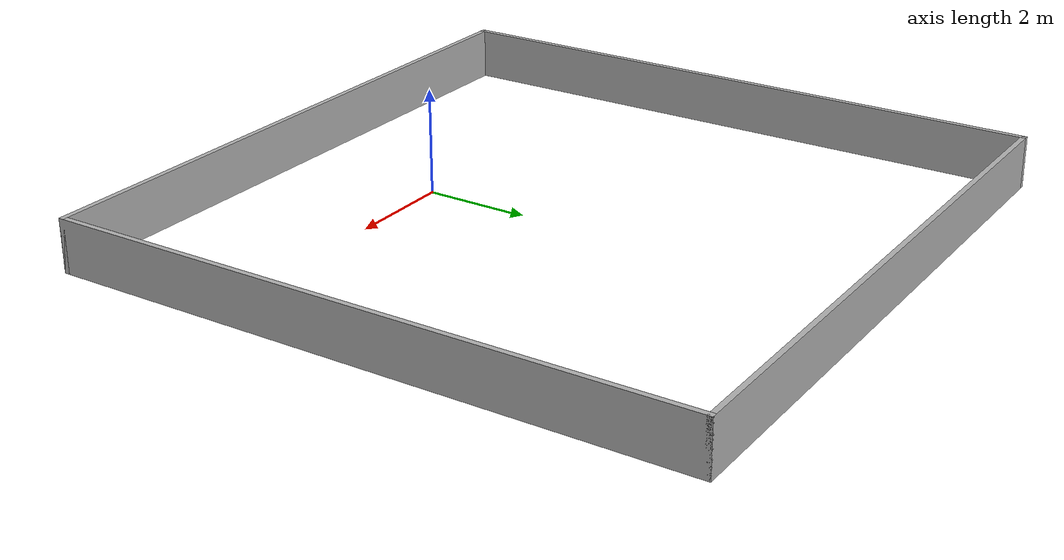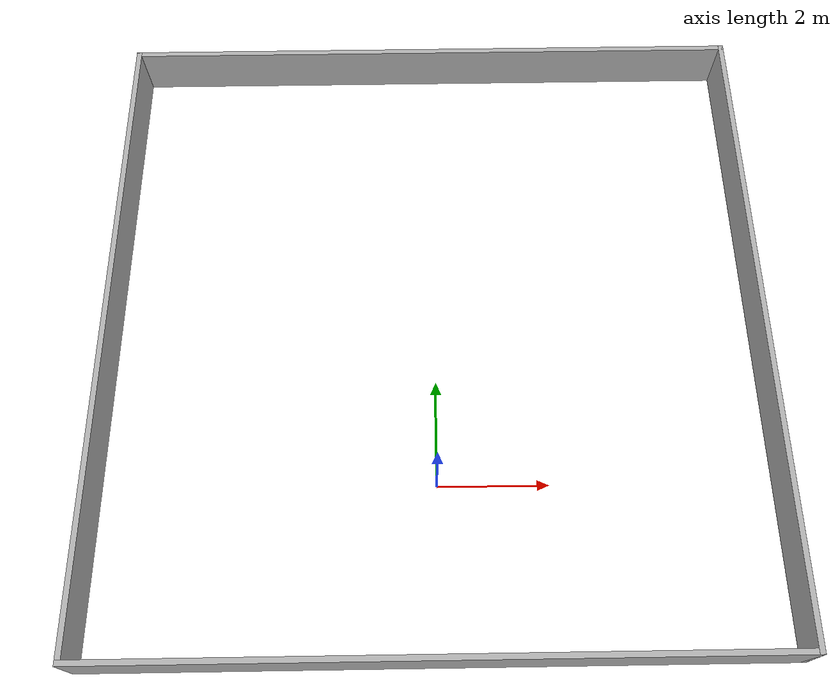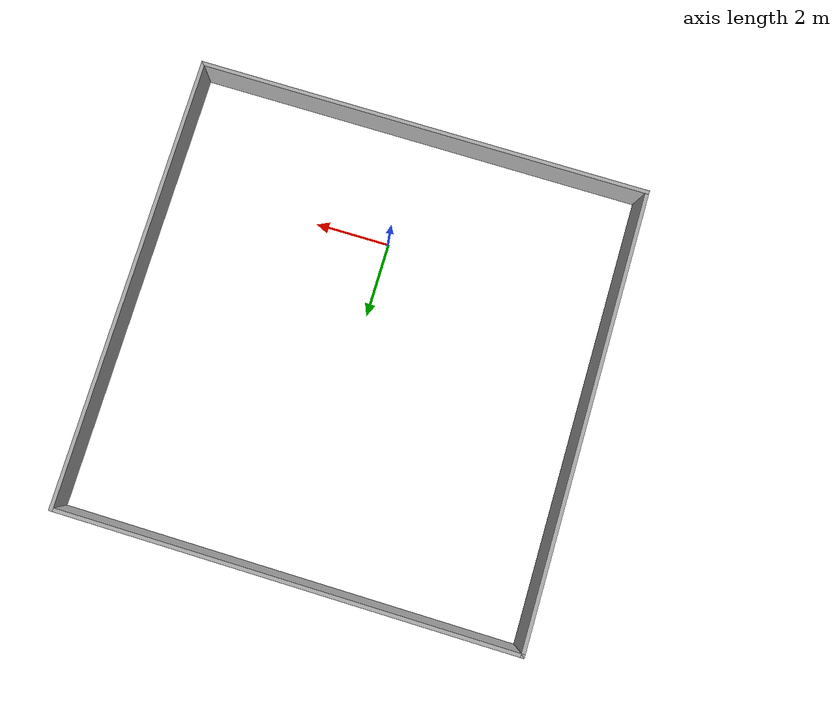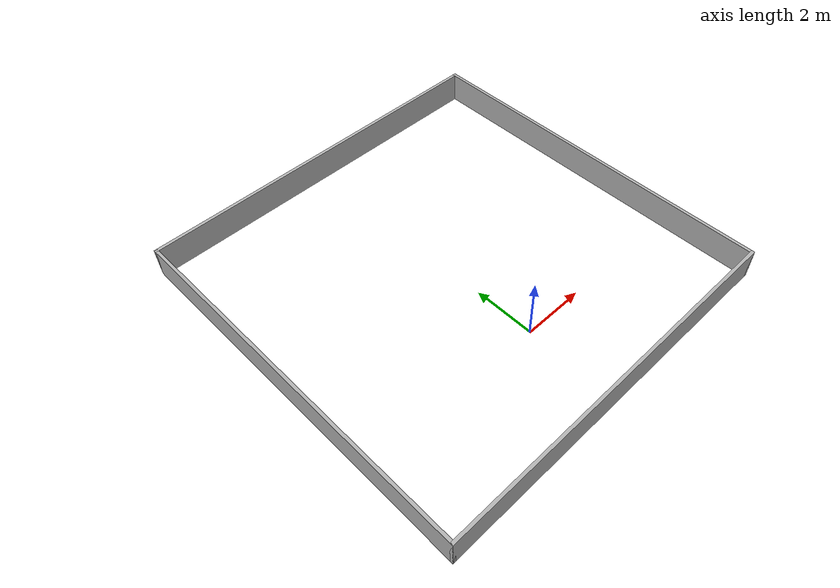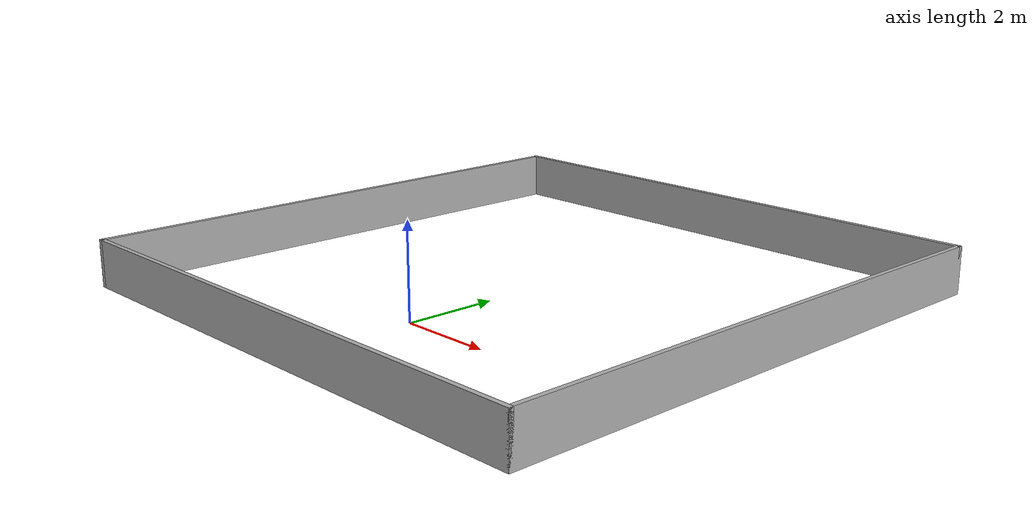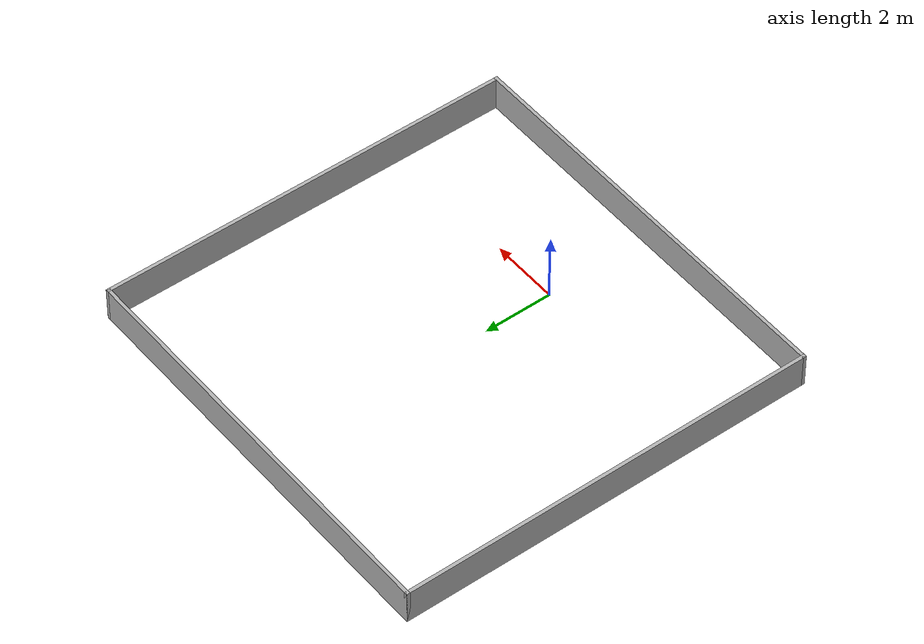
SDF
<sdf version="1.6">
 <world name="default">
  <gravity>0 0 -9.8</gravity>
  <model name="wall_south">
   <pose>0 -3.05 0.5 0 0 0</pose>
   <link name="link_wall_south">
    <inertial>
     <mass>1</mass>
     <inertia>
      <ixx>0.166667</ixx>
      <ixy>0</ixy>
      <ixz>0</ixz>
      <iyy>0.166667</iyy>
      <iyz>0</iyz>
      <izz>0.166667</izz>
     </inertia>
    </inertial>
    <visual name="visual">
     <geometry><box><size>12.2 0.1 1</size></box></geometry>
     <material>
      <ambient>0.9 0.3 0.3 1</ambient>
      <diffuse>0.7 0.7 0.7 1</diffuse>
      <specular>0.01 0.01 0.01 1</specular>
      <emissive>0 0 0 1</emissive>
      <shader type="vertex"><normal_map>__default__</normal_map></shader>
     </material>
    </visual>
    <collision name="collision">
     <geometry><box><size>12.2 0.1 1</size></box></geometry>
     <surface>
      <friction>
       <ode><mu>1</mu><mu2>1</mu2><fdir1>0 0 0</fdir1><slip1>0</slip1><slip2>0</slip2></ode>
       <torsional>
        <coefficient>1</coefficient>
        <patch_radius>0</patch_radius>
        <surface_radius>0</surface_radius>
        <use_patch_radius>1</use_patch_radius>
        <ode><slip>0</slip></ode>
       </torsional>
      </friction>
      <bounce><restitution_coefficient>0.8</restitution_coefficient><threshold>0</threshold></bounce>
      <contact>
       <collide_without_contact>0</collide_without_contact>
       <collide_without_contact_bitmask>1</collide_without_contact_bitmask>
       <collide_bitmask>1</collide_bitmask>
       <ode>
        <soft_cfm>0</soft_cfm>
        <soft_erp>0.2</soft_erp>
        <kp>1e+13</kp>
        <kd>1</kd>
        <max_vel>10</max_vel>
        <min_depth>0</min_depth>
       </ode>
       <bullet>
        <split_impulse>1</split_impulse>
        <split_impulse_penetration_threshold>-0.01</split_impulse_penetration_threshold>
        <soft_cfm>0</soft_cfm>
        <soft_erp>0.2</soft_erp>
        <kp>1e+13</kp>
        <kd>1</kd>
       </bullet>
      </contact>
     </surface>
    </collision>
   </link>
   <static>1</static>
   <allow_auto_disable>0</allow_auto_disable>
  </model>
  <model name="wall_east">
   <pose>6.05 3 0.5 0 0 0</pose>
   <link name="link_wall_east">
    <inertial>
     <mass>1</mass>
     <inertia>
      <ixx>0.166667</ixx>
      <ixy>0</ixy>
      <ixz>0</ixz>
      <iyy>0.166667</iyy>
      <iyz>0</iyz>
      <izz>0.166667</izz>
     </inertia>
    </inertial>
    <visual name="visual">
     <geometry><box><size>0.1 12.2 1</size></box></geometry>
     <material>
      <ambient>0.9 0.3 0.3 1</ambient>
      <diffuse>0.7 0.7 0.7 1</diffuse>
      <specular>0.01 0.01 0.01 1</specular>
      <emissive>0 0 0 1</emissive>
      <shader type="vertex"><normal_map>__default__</normal_map></shader>
     </material>
    </visual>
    <collision name="collision">
     <geometry><box><size>0.1 12.2 1</size></box></geometry>
     <surface>
      <friction>
       <ode><mu>1</mu><mu2>1</mu2><fdir1>0 0 0</fdir1><slip1>0</slip1><slip2>0</slip2></ode>
       <torsional>
        <coefficient>1</coefficient>
        <patch_radius>0</patch_radius>
        <surface_radius>0</surface_radius>
        <use_patch_radius>1</use_patch_radius>
        <ode><slip>0</slip></ode>
       </torsional>
      </friction>
      <bounce><restitution_coefficient>0.8</restitution_coefficient><threshold>0</threshold></bounce>
      <contact>
       <collide_without_contact>0</collide_without_contact>
       <collide_without_contact_bitmask>1</collide_without_contact_bitmask>
       <collide_bitmask>1</collide_bitmask>
       <ode>
        <soft_cfm>0</soft_cfm>
        <soft_erp>0.2</soft_erp>
        <kp>1e+13</kp>
        <kd>1</kd>
        <max_vel>10</max_vel>
        <min_depth>0</min_depth>
       </ode>
       <bullet>
        <split_impulse>1</split_impulse>
        <split_impulse_penetration_threshold>-0.01</split_impulse_penetration_threshold>
        <soft_cfm>0</soft_cfm>
        <soft_erp>0.2</soft_erp>
        <kp>1e+13</kp>
        <kd>1</kd>
       </bullet>
      </contact>
     </surface>
    </collision>
   </link>
   <static>1</static>
   <allow_auto_disable>0</allow_auto_disable>
  </model>
  <model name="wall_north">
   <pose>0 9.05 0.5 0 0 0</pose>
   <link name="link_wall_north">
    <inertial>
     <mass>1</mass>
     <inertia>
      <ixx>0.166667</ixx>
      <ixy>0</ixy>
      <ixz>0</ixz>
      <iyy>0.166667</iyy>
      <iyz>0</iyz>
      <izz>0.166667</izz>
     </inertia>
    </inertial>
    <visual name="visual">
     <geometry><box><size>12.2 0.1 1</size></box></geometry>
     <material>
      <ambient>0.9 0.3 0.3 1</ambient>
      <diffuse>0.7 0.7 0.7 1</diffuse>
      <specular>0.01 0.01 0.01 1</specular>
      <emissive>0 0 0 1</emissive>
      <shader type="vertex"><normal_map>__default__</normal_map></shader>
     </material>
    </visual>
    <collision name="collision">
     <geometry><box><size>12.2 0.1 1</size></box></geometry>
     <surface>
      <friction>
       <ode><mu>1</mu><mu2>1</mu2><fdir1>0 0 0</fdir1><slip1>0</slip1><slip2>0</slip2></ode>
       <torsional>
        <coefficient>1</coefficient>
        <patch_radius>0</patch_radius>
        <surface_radius>0</surface_radius>
        <use_patch_radius>1</use_patch_radius>
        <ode><slip>0</slip></ode>
       </torsional>
      </friction>
      <bounce><restitution_coefficient>0.8</restitution_coefficient><threshold>0</threshold></bounce>
      <contact>
       <collide_without_contact>0</collide_without_contact>
       <collide_without_contact_bitmask>1</collide_without_contact_bitmask>
       <collide_bitmask>1</collide_bitmask>
       <ode>
        <soft_cfm>0</soft_cfm>
        <soft_erp>0.2</soft_erp>
        <kp>1e+13</kp>
        <kd>1</kd>
        <max_vel>10</max_vel>
        <min_depth>0</min_depth>
       </ode>
       <bullet>
        <split_impulse>1</split_impulse>
        <split_impulse_penetration_threshold>-0.01</split_impulse_penetration_threshold>
        <soft_cfm>0</soft_cfm>
        <soft_erp>0.2</soft_erp>
        <kp>1e+13</kp>
        <kd>1</kd>
       </bullet>
      </contact>
     </surface>
    </collision>
   </link>
   <static>1</static>
   <allow_auto_disable>0</allow_auto_disable>
  </model>
  <model name="wall_west">
   <pose>-6.05 3 0.5 0 0 0</pose>
   <link name="link_wall_west">
    <inertial>
     <mass>1</mass>
     <inertia>
      <ixx>0.166667</ixx>
      <ixy>0</ixy>
      <ixz>0</ixz>
      <iyy>0.166667</iyy>
      <iyz>0</iyz>
      <izz>0.166667</izz>
     </inertia>
    </inertial>
    <visual name="visual">
     <geometry><box><size>0.1 12.2 1</size></box></geometry>
     <material>
      <ambient>0.9 0.3 0.3 1</ambient>
      <diffuse>0.7 0.7 0.7 1</diffuse>
      <specular>0.01 0.01 0.01 1</specular>
      <emissive>0 0 0 1</emissive>
      <shader type="vertex"><normal_map>__default__</normal_map></shader>
     </material>
    </visual>
    <collision name="collision">
     <geometry><box><size>0.1 12.2 1</size></box></geometry>
     <surface>
      <friction>
       <ode><mu>1</mu><mu2>1</mu2><fdir1>0 0 0</fdir1><slip1>0</slip1><slip2>0</slip2></ode>
       <torsional>
        <coefficient>1</coefficient>
        <patch_radius>0</patch_radius>
        <surface_radius>0</surface_radius>
        <use_patch_radius>1</use_patch_radius>
        <ode><slip>0</slip></ode>
       </torsional>
      </friction>
      <bounce><restitution_coefficient>0.8</restitution_coefficient><threshold>0</threshold></bounce>
      <contact>
       <collide_without_contact>0</collide_without_contact>
       <collide_without_contact_bitmask>1</collide_without_contact_bitmask>
       <collide_bitmask>1</collide_bitmask>
       <ode>
        <soft_cfm>0</soft_cfm>
        <soft_erp>0.2</soft_erp>
        <kp>1e+13</kp>
        <kd>1</kd>
        <max_vel>10</max_vel>
        <min_depth>0</min_depth>
       </ode>
       <bullet>
        <split_impulse>1</split_impulse>
        <split_impulse_penetration_threshold>-0.01</split_impulse_penetration_threshold>
        <soft_cfm>0</soft_cfm>
        <soft_erp>0.2</soft_erp>
        <kp>1e+13</kp>
        <kd>1</kd>
       </bullet>
      </contact>
     </surface>
    </collision>
   </link>
   <static>1</static>
   <allow_auto_disable>0</allow_auto_disable>
  </model>
 </world>
</sdf>
